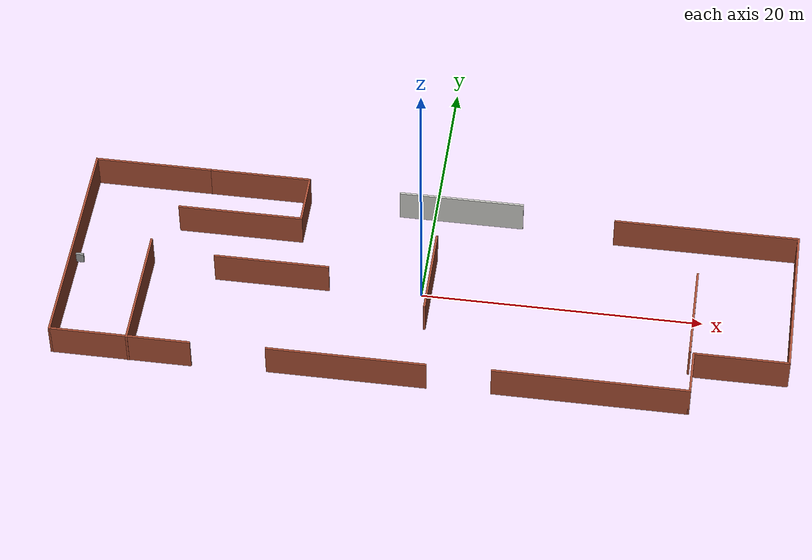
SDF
<?xml version='1.0'?>
<sdf version='1.6'>
  <model name='gazworld'>
    <pose frame=''>0.621319 -0.373761 0 0 -0 0</pose>
    <link name='Wall_11'>
      <collision name='Wall_11_Collision'>
        <geometry>
          <box>
            <size>6.75 0.15 2.5</size>
          </box>
        </geometry>
        <pose frame=''>0 0 1.25 0 -0 0</pose>
      </collision>
      <visual name='Wall_11_Visual'>
        <pose frame=''>0 0 1.25 0 -0 0</pose>
        <geometry>
          <box>
            <size>6.75 0.15 2.5</size>
          </box>
        </geometry>
        <material>
          <script>
            <uri>file://media/materials/scripts/gazebo.material</uri>
            <name>Gazebo/Bricks</name>
          </script>
          <ambient>1 1 1 1</ambient>
        </material>
        <meta>
          <layer>0</layer>
        </meta>
      </visual>
      <pose frame=''>22.289 -4.51258 0 0 -0 0</pose>
    </link>
    <link name='Wall_12'>
      <collision name='Wall_12_Collision'>
        <geometry>
          <box>
            <size>11.75 0.15 2.5</size>
          </box>
        </geometry>
        <pose frame=''>0 0 1.25 0 -0 0</pose>
      </collision>
      <visual name='Wall_12_Visual'>
        <pose frame=''>0 0 1.25 0 -0 0</pose>
        <geometry>
          <box>
            <size>11.75 0.15 2.5</size>
          </box>
        </geometry>
        <material>
          <script>
            <uri>file://media/materials/scripts/gazebo.material</uri>
            <name>Gazebo/Bricks</name>
          </script>
          <ambient>1 1 1 1</ambient>
        </material>
        <meta>
          <layer>0</layer>
        </meta>
      </visual>
      <pose frame=''>25.589 1.28742 0 0 -0 1.5708</pose>
    </link>
    <link name='Wall_13'>
      <collision name='Wall_13_Collision'>
        <geometry>
          <box>
            <size>13.25 0.15 2.5</size>
          </box>
        </geometry>
        <pose frame=''>0 0 1.25 0 -0 0</pose>
      </collision>
      <visual name='Wall_13_Visual'>
        <pose frame=''>0 0 1.25 0 -0 0</pose>
        <geometry>
          <box>
            <size>13.25 0.15 2.5</size>
          </box>
        </geometry>
        <material>
          <script>
            <uri>file://media/materials/scripts/gazebo.material</uri>
            <name>Gazebo/Bricks</name>
          </script>
          <ambient>1 1 1 1</ambient>
        </material>
        <meta>
          <layer>0</layer>
        </meta>
      </visual>
      <pose frame=''>19.039 7.08742 0 0 -0 3.14159</pose>
    </link>
    <link name='Wall_15'>
      <collision name='Wall_15_Collision'>
        <geometry>
          <box>
            <size>8.5 0.15 2.5</size>
          </box>
        </geometry>
        <pose frame=''>0 0 1.25 0 -0 0</pose>
      </collision>
      <visual name='Wall_15_Visual'>
        <pose frame=''>0 0 1.25 0 -0 0</pose>
        <geometry>
          <box>
            <size>8.5 0.15 2.5</size>
          </box>
        </geometry>
        <material>
          <script>
            <uri>file://media/materials/scripts/gazebo.material</uri>
            <name>Gazebo/Bricks</name>
          </script>
          <ambient>1 1 1 1</ambient>
        </material>
        <meta>
          <layer>0</layer>
        </meta>
      </visual>
      <pose frame=''>-21.414 8.18817 0 0 -0 0</pose>
    </link>
    <link name='Wall_16'>
      <collision name='Wall_16_Collision'>
        <geometry>
          <box>
            <size>7.5 0.15 2.5</size>
          </box>
        </geometry>
        <pose frame=''>0 0 1.25 0 -0 0</pose>
      </collision>
      <visual name='Wall_16_Visual'>
        <pose frame=''>0 0 1.25 0 -0 0</pose>
        <geometry>
          <box>
            <size>7.5 0.15 2.5</size>
          </box>
        </geometry>
        <material>
          <script>
            <uri>file://media/materials/scripts/gazebo.material</uri>
            <name>Gazebo/Bricks</name>
          </script>
          <ambient>1 1 1 1</ambient>
        </material>
        <meta>
          <layer>0</layer>
        </meta>
      </visual>
      <pose frame=''>-13.564 8.18817 0 0 -0 0</pose>
    </link>
    <link name='Wall_17'>
      <collision name='Wall_17_Collision'>
        <geometry>
          <box>
            <size>4 0.15 2.5</size>
          </box>
        </geometry>
        <pose frame=''>0 0 1.25 0 -0 0</pose>
      </collision>
      <visual name='Wall_17_Visual'>
        <pose frame=''>0 0 1.25 0 -0 0</pose>
        <geometry>
          <box>
            <size>4 0.15 2.5</size>
          </box>
        </geometry>
        <material>
          <script>
            <uri>file://media/materials/scripts/gazebo.material</uri>
            <name>Gazebo/Bricks</name>
          </script>
          <ambient>1 1 1 1</ambient>
        </material>
        <meta>
          <layer>0</layer>
        </meta>
      </visual>
      <pose frame=''>-9.88897 6.26317 0 0 -0 -1.5708</pose>
    </link>
    <link name='Wall_18'>
      <collision name='Wall_18_Collision'>
        <geometry>
          <box>
            <size>9 0.15 2.5</size>
          </box>
        </geometry>
        <pose frame=''>0 0 1.25 0 -0 0</pose>
      </collision>
      <visual name='Wall_18_Visual'>
        <pose frame=''>0 0 1.25 0 -0 0</pose>
        <geometry>
          <box>
            <size>9 0.15 2.5</size>
          </box>
        </geometry>
        <material>
          <script>
            <uri>file://media/materials/scripts/gazebo.material</uri>
            <name>Gazebo/Bricks</name>
          </script>
          <ambient>1 1 1 1</ambient>
        </material>
        <meta>
          <layer>0</layer>
        </meta>
      </visual>
      <pose frame=''>-14.314 4.33817 0 0 -0 3.14159</pose>
    </link>
    <link name='Wall_2'>
      <collision name='Wall_2_Collision'>
        <geometry>
          <box>
            <size>16.5 0.15 2.5</size>
          </box>
        </geometry>
        <pose frame=''>0 0 1.25 0 -0 0</pose>
      </collision>
      <visual name='Wall_2_Visual'>
        <pose frame=''>0 0 1.25 0 -0 0</pose>
        <geometry>
          <box>
            <size>16.5 0.15 2.5</size>
          </box>
        </geometry>
        <material>
          <script>
            <uri>file://media/materials/scripts/gazebo.material</uri>
            <name>Gazebo/Bricks</name>
          </script>
          <ambient>1 1 1 1</ambient>
        </material>
        <meta>
          <layer>0</layer>
        </meta>
      </visual>
      <pose frame=''>-25.589 0.01317 0 0 -0 -1.5708</pose>
    </link>
    <link name='Wall_20'>
      <collision name='Wall_20_Collision'>
        <geometry>
          <box>
            <size>6.75 0.15 2.5</size>
          </box>
        </geometry>
        <pose frame=''>0 0 1.25 0 -0 0</pose>
      </collision>
      <visual name='Wall_20_Visual'>
        <pose frame=''>0 0 1.25 0 -0 0</pose>
        <geometry>
          <box>
            <size>6.75 0.15 2.5</size>
          </box>
        </geometry>
        <material>
          <script>
            <uri>file://media/materials/scripts/gazebo.material</uri>
            <name>Gazebo/Bricks</name>
          </script>
          <ambient>1 1 1 1</ambient>
        </material>
        <meta>
          <layer>0</layer>
        </meta>
      </visual>
      <pose frame=''>-0.014779 0.60797 0 0 -0 -1.5708</pose>
    </link>
    <link name='Wall_23'>
      <collision name='Wall_23_Collision'>
        <geometry>
          <box>
            <size>7.25 0.15 2.5</size>
          </box>
        </geometry>
        <pose frame=''>0 0 1.25 0 -0 0</pose>
      </collision>
      <visual name='Wall_23_Visual'>
        <pose frame=''>0 0 1.25 0 -0 0</pose>
        <geometry>
          <box>
            <size>7.25 0.15 2.5</size>
          </box>
        </geometry>
        <material>
          <script>
            <uri>file://media/materials/scripts/gazebo.material</uri>
            <name>Gazebo/Bricks</name>
          </script>
          <ambient>1 1 1 1</ambient>
        </material>
        <meta>
          <layer>0</layer>
        </meta>
      </visual>
      <pose frame=''>18.7111 -0.727913 0 0 -0 1.5708</pose>
    </link>
    <link name='Wall_25'>
      <collision name='Wall_25_Collision'>
        <geometry>
          <box>
            <size>9.25 0.15 2.5</size>
          </box>
        </geometry>
        <pose frame=''>0 0 1.25 0 -0 0</pose>
      </collision>
      <visual name='Wall_25_Visual'>
        <pose frame=''>0 0 1.25 0 -0 0</pose>
        <geometry>
          <box>
            <size>9.25 0.15 2.5</size>
          </box>
        </geometry>
        <material>
          <script>
            <uri>file://media/materials/scripts/gazebo.material</uri>
            <name>Gazebo/Bricks</name>
          </script>
          <ambient>1 1 1 1</ambient>
        </material>
        <meta>
          <layer>0</layer>
        </meta>
      </visual>
      <pose frame=''>-20.1317 -3.63817 0 0 -0 -1.5708</pose>
    </link>
    <link name='Wall_27'>
      <collision name='Wall_27_Collision'>
        <geometry>
          <box>
            <size>8.25 0.15 2.5</size>
          </box>
        </geometry>
        <pose frame=''>0 0 1.25 0 -0 0</pose>
      </collision>
      <visual name='Wall_27_Visual'>
        <pose frame=''>0 0 1.25 0 -0 0</pose>
        <geometry>
          <box>
            <size>8.25 0.15 2.5</size>
          </box>
        </geometry>
        <material>
          <script>
            <uri>file://media/materials/scripts/gazebo.material</uri>
            <name>Gazebo/Bricks</name>
          </script>
          <ambient>1 1 1 1</ambient>
        </material>
        <meta>
          <layer>0</layer>
        </meta>
      </visual>
      <pose frame=''>-11.32 0.002287 0 0 -0 0</pose>
    </link>
    <link name='Wall_29'>
      <collision name='Wall_29_Collision'>
        <geometry>
          <box>
            <size>9 0.15 2.5</size>
          </box>
        </geometry>
        <pose frame=''>0 0 1.25 0 -0 0</pose>
      </collision>
      <visual name='Wall_29_Visual'>
        <pose frame=''>0 0 1.25 0 -0 0</pose>
        <geometry>
          <box>
            <size>9 0.15 2.5</size>
          </box>
        </geometry>
        <material>
          <script>
            <uri>file://media/materials/scripts/gazebo.material</uri>
            <name>Gazebo/CeilingTiled</name>
          </script>
          <ambient>1 1 1 1</ambient>
        </material>
        <meta>
          <layer>0</layer>
        </meta>
      </visual>
      <pose frame=''>1.28534 7.74445 0 0 -0 0</pose>
    </link>
    <link name='Wall_3'>
      <collision name='Wall_3_Collision'>
        <geometry>
          <box>
            <size>10 0.15 2.5</size>
          </box>
        </geometry>
        <pose frame=''>0 0 1.25 0 -0 0</pose>
      </collision>
      <visual name='Wall_3_Visual'>
        <pose frame=''>0 0 1.25 0 -0 0</pose>
        <geometry>
          <box>
            <size>10 0.15 2.5</size>
          </box>
        </geometry>
        <material>
          <script>
            <uri>file://media/materials/scripts/gazebo.material</uri>
            <name>Gazebo/Bricks</name>
          </script>
          <ambient>1 1 1 1</ambient>
        </material>
        <meta>
          <layer>0</layer>
        </meta>
      </visual>
      <pose frame=''>-20.664 -8.16183 0 0 -0 0</pose>
    </link>
    <link name='Wall_5'>
      <collision name='Wall_5_Collision'>
        <geometry>
          <box>
            <size>11.25 0.15 2.5</size>
          </box>
        </geometry>
        <pose frame=''>0 0 1.25 0 -0 0</pose>
      </collision>
      <visual name='Wall_5_Visual'>
        <pose frame=''>0 0 1.25 0 -0 0</pose>
        <geometry>
          <box>
            <size>11.25 0.15 2.5</size>
          </box>
        </geometry>
        <material>
          <script>
            <uri>file://media/materials/scripts/gazebo.material</uri>
            <name>Gazebo/Bricks</name>
          </script>
          <ambient>1 1 1 1</ambient>
        </material>
        <meta>
          <layer>0</layer>
        </meta>
      </visual>
      <pose frame=''>-4.79076 -7.96959 0 0 -0 0</pose>
    </link>
    <link name='Wall_7'>
      <collision name='Wall_7_Collision'>
        <geometry>
          <box>
            <size>13.75 0.15 2.5</size>
          </box>
        </geometry>
        <pose frame=''>0 0 1.25 0 -0 0</pose>
      </collision>
      <visual name='Wall_7_Visual'>
        <pose frame=''>0 0 1.25 0 -0 0</pose>
        <geometry>
          <box>
            <size>13.75 0.15 2.5</size>
          </box>
        </geometry>
        <material>
          <script>
            <uri>file://media/materials/scripts/gazebo.material</uri>
            <name>Gazebo/Bricks</name>
          </script>
          <ambient>1 1 1 1</ambient>
        </material>
        <meta>
          <layer>0</layer>
        </meta>
      </visual>
      <pose frame=''>12.189 -7.86258 0 0 -0 0</pose>
    </link>
    <link name='Wall_8'>
      <collision name='Wall_8_Collision'>
        <geometry>
          <box>
            <size>3.5 0.15 2.5</size>
          </box>
        </geometry>
        <pose frame=''>0 0 1.25 0 -0 0</pose>
      </collision>
      <visual name='Wall_8_Visual'>
        <pose frame=''>0 0 1.25 0 -0 0</pose>
        <geometry>
          <box>
            <size>3.5 0.15 2.5</size>
          </box>
        </geometry>
        <material>
          <script>
            <uri>file://media/materials/scripts/gazebo.material</uri>
            <name>Gazebo/Bricks</name>
          </script>
          <ambient>1 1 1 1</ambient>
        </material>
        <meta>
          <layer>0</layer>
        </meta>
      </visual>
      <pose frame=''>18.989 -6.18758 0 0 -0 1.5708</pose>
    </link>
    <link name='Window_1'>
      <collision name='Window_1_Collision'>
        <geometry>
          <box>
            <size>0.8 0.17 0.8</size>
          </box>
        </geometry>
        <pose frame=''>0 0 0.4 0 -0 0</pose>
      </collision>
      <visual name='Window_1_Visual'>
        <pose frame=''>0 0 0.4 0 -0 0</pose>
        <geometry>
          <box>
            <size>0.8 0.17 0.8</size>
          </box>
        </geometry>
        <material>
          <script>
            <uri>file://media/materials/scripts/gazebo.material</uri>
            <name>Gazebo/Grey</name>
          </script>
        </material>
      </visual>
      <pose frame=''>-25.3538 -0.067125 0.5 0 -0 0</pose>
    </link>
    <static>1</static>
  </model>
</sdf>
